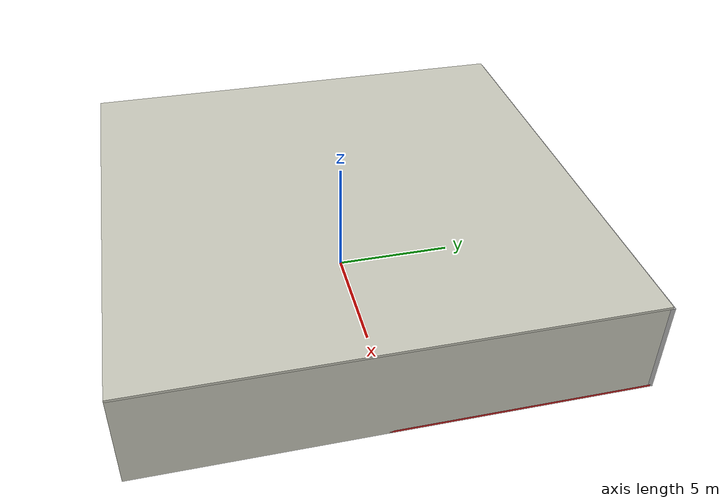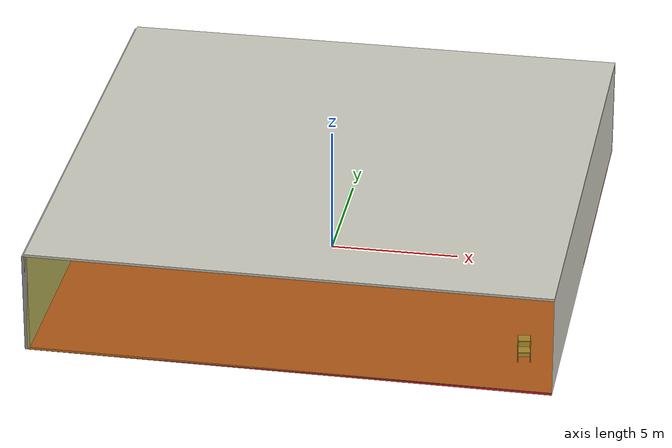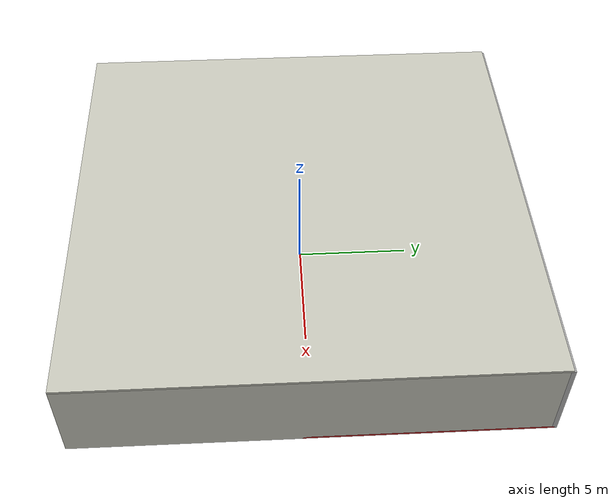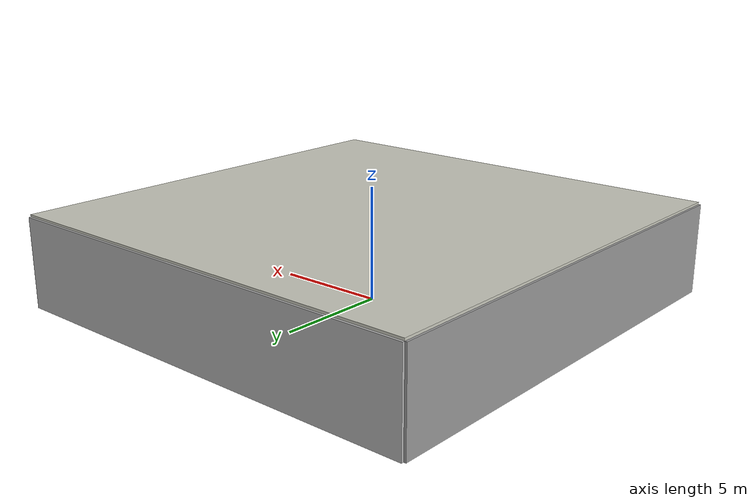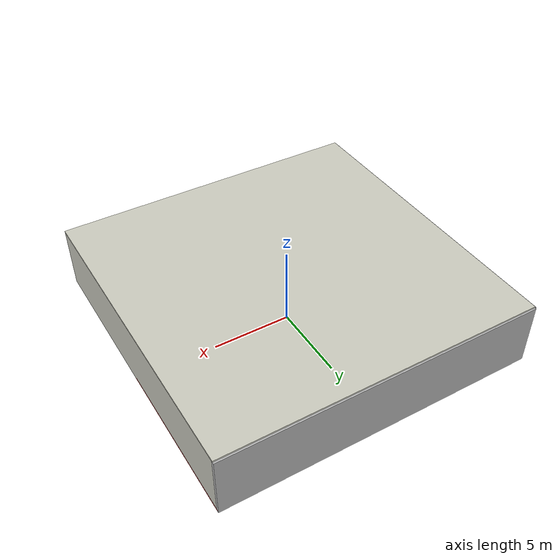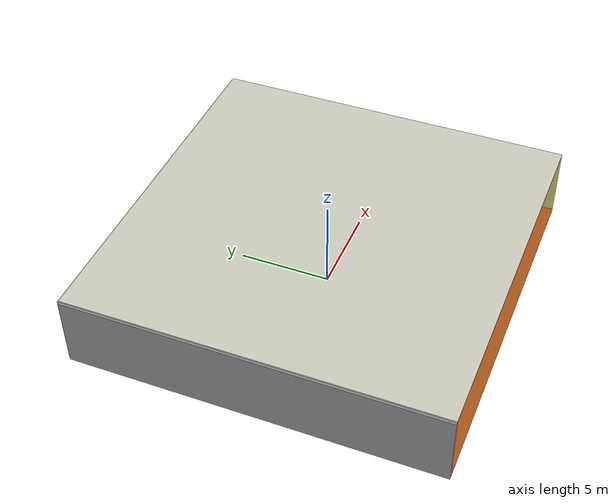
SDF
<sdf version="1.4">
 <world name="default">
  <physics type="ode">
   <max_step_size>0.001</max_step_size>
   <real_time_factor>1</real_time_factor>
   <real_time_update_rate>1000</real_time_update_rate>
   <gravity>0 0 -9.8</gravity>
  </physics>
  <scene><ambient>0.4 0.4 0.4 1</ambient><background>0.7 0.7 0.7 1</background><shadows>1</shadows></scene>
  <model name="Surrounding">
   <static>1</static>
   <link name="Ceiling">
    <collision name="Ceiling_Collision"><geometry><box><size>20 20 0.1</size></box></geometry></collision>
    <visual name="Ceiling_Visual">
     <geometry><box><size>20 20 0.1</size></box></geometry>
     <material>
      <script><uri>file://media/materials/scripts/gazebo.material</uri><name>Gazebo/PaintedWall</name></script>
     </material>
    </visual>
    <pose>0 0 4.05 0 0 0</pose>
   </link>
   <link name="Wall_South">
    <collision name="Wall_South_Collision">
     <geometry><box><size>20 0 4</size></box></geometry>
     <pose>0 0 2 0 -0 0</pose>
    </collision>
    <visual name="Wall_South_Visual">
     <pose>0 0 2 0 -0 0</pose>
     <geometry><box><size>20 0 4</size></box></geometry>
     <material>
      <script>
       <uri>file://media/materials/scripts/gazebo.material</uri>
       <name>Gazebo/YellowTransparent</name>
      </script>
     </material>
    </visual>
    <velocity_decay><linear>0</linear><angular>0</angular></velocity_decay>
    <pose>0 -10 0 0 -0 0</pose>
   </link>
   <link name="Wall_East">
    <collision name="Wall_21_Collision">
     <geometry><box><size>20 0 4</size></box></geometry>
     <pose>0 0 2 0 -0 0</pose>
    </collision>
    <visual name="Wall_21_Visual">
     <pose>0 0 2 0 -0 0</pose>
     <geometry><box><size>20 0 4</size></box></geometry>
     <material>
      <script><uri>file://media/materials/scripts/gazebo.material</uri><name>Gazebo/PaintedWall</name></script>
     </material>
    </visual>
    <velocity_decay><linear>0</linear><angular>0</angular></velocity_decay>
    <pose>10 0 0 0 -0 1.5708</pose>
   </link>
   <link name="Wall_North">
    <collision name="Wall_22_Collision">
     <geometry><box><size>20 0.2 4</size></box></geometry>
     <pose>0 0 2 0 -0 0</pose>
    </collision>
    <visual name="Wall_22_Visual">
     <pose>0 0 2 0 -0 0</pose>
     <geometry><box><size>20 0.2 4</size></box></geometry>
     <material>
      <script><uri>file://media/materials/scripts/gazebo.material</uri><name>Gazebo/JointAnchor</name></script>
     </material>
    </visual>
    <velocity_decay><linear>0</linear><angular>0</angular></velocity_decay>
    <pose>0 10 0 0 -0 0</pose>
   </link>
   <link name="Wall_West">
    <collision name="Wall_23_Collision">
     <geometry><box><size>20 0.2 4</size></box></geometry>
     <pose>0 0 2 0 -0 0</pose>
    </collision>
    <visual name="Wall_23_Visual">
     <pose>0 0 2 0 -0 0</pose>
     <geometry><box><size>20 0.2 4</size></box></geometry>
     <material>
      <script><uri>file://media/materials/scripts/gazebo.material</uri><name>Gazebo/GreyGradientSky</name></script>
     </material>
    </visual>
    <velocity_decay><linear>0</linear><angular>0</angular></velocity_decay>
    <pose>-10 0 0 0 0 -1.5708</pose>
   </link>
   <link name="Ground_link">
    <collision name="collision">
     <pose>0 0 .05 0 -0 0</pose>
     <geometry><box><size>20 20 0.1</size></box></geometry>
    </collision>
    <visual name="visual">
     <pose>0 0 .05 0 -0 0</pose>
     <geometry><box><size>20 20 0.1</size></box></geometry>
     <material>
      <script><uri>file://media/materials/scripts/gazebo.material</uri><name>Gazebo/Red</name></script>
     </material>
    </visual>
   </link>
   <static>1</static>
  </model>
  <spherical_coordinates>
   <surface_model>EARTH_WGS84</surface_model>
   <latitude_deg>0</latitude_deg>
   <longitude_deg>0</longitude_deg>
   <elevation>0</elevation>
   <heading_deg>0</heading_deg>
  </spherical_coordinates>
  <light name="lightball_0" type="diffuse">
   <diffuse>0.8 0.8 0.8 1</diffuse>
   <specular>0.2 0.2 0.2 1</specular>
   <attenuation>
    <range>100</range>
    <constant>0.7</constant>
    <linear>0.01</linear>
    <quadratic>0.001</quadratic>
   </attenuation>
   <direction>-0.5 0.1 -0.9</direction>
   <pose>2.63377726439 4.44166611551 3.44507320576 0 0 0</pose>
  </light>
  <light name="lightball_1" type="diffuse">
   <diffuse>0.8 0.8 0.8 1</diffuse>
   <specular>0.2 0.2 0.2 1</specular>
   <attenuation>
    <range>100</range>
    <constant>0.7</constant>
    <linear>0.01</linear>
    <quadratic>0.001</quadratic>
   </attenuation>
   <direction>-0.5 0.1 -0.9</direction>
   <pose>-7.24275912679 9.71335927627 3.07851599752 0 0 0</pose>
  </light>
  <light name="lightball_2" type="diffuse">
   <diffuse>0.8 0.8 0.8 1</diffuse>
   <specular>0.2 0.2 0.2 1</specular>
   <attenuation>
    <range>100</range>
    <constant>0.7</constant>
    <linear>0.01</linear>
    <quadratic>0.001</quadratic>
   </attenuation>
   <direction>-0.5 0.1 -0.9</direction>
   <pose>8.85298899032 -5.22305330043 0.974413119227 0 0 0</pose>
  </light>
  <light name="lightball_3" type="diffuse">
   <diffuse>0.8 0.8 0.8 1</diffuse>
   <specular>0.2 0.2 0.2 1</specular>
   <attenuation>
    <range>100</range>
    <constant>0.7</constant>
    <linear>0.01</linear>
    <quadratic>0.001</quadratic>
   </attenuation>
   <direction>-0.5 0.1 -0.9</direction>
   <pose>1.27765284665 7.67585901939 1.84494718209 0 0 0</pose>
  </light>
  <light name="lightball_4" type="diffuse">
   <diffuse>0.8 0.8 0.8 1</diffuse>
   <specular>0.2 0.2 0.2 1</specular>
   <attenuation>
    <range>100</range>
    <constant>0.7</constant>
    <linear>0.01</linear>
    <quadratic>0.001</quadratic>
   </attenuation>
   <direction>-0.5 0.1 -0.9</direction>
   <pose>-6.13812808773 9.89947017147 1.98904244334 0 0 0</pose>
  </light>
  <light name="lightball_5" type="diffuse">
   <diffuse>0.8 0.8 0.8 1</diffuse>
   <specular>0.2 0.2 0.2 1</specular>
   <attenuation>
    <range>100</range>
    <constant>0.7</constant>
    <linear>0.01</linear>
    <quadratic>0.001</quadratic>
   </attenuation>
   <direction>-0.5 0.1 -0.9</direction>
   <pose>-0.585302613708 -0.881504930009 1.72599798561 0 0 0</pose>
  </light>
  <light name="lightball_6" type="diffuse">
   <diffuse>0.8 0.8 0.8 1</diffuse>
   <specular>0.2 0.2 0.2 1</specular>
   <attenuation>
    <range>100</range>
    <constant>0.7</constant>
    <linear>0.01</linear>
    <quadratic>0.001</quadratic>
   </attenuation>
   <direction>-0.5 0.1 -0.9</direction>
   <pose>9.46520025037 7.52406464417 3.32866831078 0 0 0</pose>
  </light>
  <light name="lightball_7" type="diffuse">
   <diffuse>0.8 0.8 0.8 1</diffuse>
   <specular>0.2 0.2 0.2 1</specular>
   <attenuation>
    <range>100</range>
    <constant>0.7</constant>
    <linear>0.01</linear>
    <quadratic>0.001</quadratic>
   </attenuation>
   <direction>-0.5 0.1 -0.9</direction>
   <pose>-4.94930132712 8.0101800018 3.85595455138 0 0 0</pose>
  </light>
  <light name="lightball_8" type="diffuse">
   <diffuse>0.8 0.8 0.8 1</diffuse>
   <specular>0.2 0.2 0.2 1</specular>
   <attenuation>
    <range>100</range>
    <constant>0.7</constant>
    <linear>0.01</linear>
    <quadratic>0.001</quadratic>
   </attenuation>
   <direction>-0.5 0.1 -0.9</direction>
   <pose>-0.310722284906 2.20336881211 3.51009477926 0 0 0</pose>
  </light>
  <include>
   <uri>model://construction_cone</uri>
   <pose>-1.23745070641 -0.457584341333 0 0 0 2.42158075958</pose>
  </include>
  <include>
   <uri>model://textured_shapes</uri>
   <pose>-1.02928050773 2.11265415919 0 0 0 0.1924061257</pose>
  </include>
  <include><uri>model://cabinet</uri><pose>-1.32382460544 4.64001009491 0 0 0 1.30504957849</pose></include>
  <include>
   <uri>model://robocup_3Dsim_goal</uri>
   <pose>1.57171512555 6.72462768382 0 0 0 1.26026010628</pose>
  </include>
  <include><uri>model://cabinet</uri><pose>8.65120090977 -7.70910091642 0 0 0 1.7341545223</pose></include>
  <include><uri>model://cabinet</uri><pose>8.16709411712 4.72132308501 0 0 0 1.59312505543</pose></include>
 </world>
</sdf>

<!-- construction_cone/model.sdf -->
<sdf version="1.5">
  <model name="Construction Cone">
    <link name="link">
      <collision name="collision">
        <geometry>
          <mesh>
            <scale>10 10 10</scale>
            <uri>file://isr-testbed/construction_cone/meshes/construction_cone.dae</uri>
          </mesh>
        </geometry>
      </collision>
      <visual name="visual">
        <geometry>
          <mesh>
            <scale>10 10 10</scale>
            <uri>file://isr-testbed/construction_cone/meshes/construction_cone.dae</uri>
          </mesh>
        </geometry>
      </visual>
    </link>
  </model>
</sdf>

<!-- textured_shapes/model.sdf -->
<sdf version="1.6">
  <model name="textured_shapes">
    <pose>0 0 0.5 0 0 0</pose>
    <link name="box">
      <pose>0 -1.5 0 0 0 0</pose>
      <collision name="collision">
        <geometry>
          <box>
            <size>1 1 1</size>
          </box>
        </geometry>
      </collision>
      <visual name="visual">
        <geometry>
          <box>
            <size>1 1 1</size>
          </box>
        </geometry>
        <material>
          <script>
            <uri>model://../model_source/models/textured_shapes/materials/scripts</uri>
            <uri>model://../model_source/models/textured_shapes/materials/textures</uri>
            <name>TexturedShape/Squares</name>
          </script>
        </material>
      </visual>
    </link>
    <link name="sphere">
      <collision name="collision">
        <geometry>
          <sphere>
            <radius>0.5</radius>
          </sphere>
        </geometry>
      </collision>
      <visual name="visual">
        <geometry>
          <sphere>
            <radius>0.5</radius>
          </sphere>
        </geometry>
        <material>
          <script>
            <uri>model://../model_source/models/textured_shapes/materials/scripts</uri>
            <uri>model://../model_source/models/textured_shapes/materials/textures</uri>
            <name>TexturedShape/Squares</name>
          </script>
        </material>
      </visual>
    </link>
    <link name="cylinder">
      <pose>0 1.5 0 0 0 0</pose>
      <collision name="collision">
        <geometry>
          <cylinder>
            <radius>0.5</radius>
            <length>1</length>
          </cylinder>
        </geometry>
      </collision>
      <visual name="visual">
        <geometry>
          <cylinder>
            <radius>0.5</radius>
            <length>1</length>
          </cylinder>
        </geometry>
        <material>
          <script>
            <uri>model://../model_source/models/textured_shapes/materials/scripts</uri>
            <uri>model://../model_source/models/textured_shapes/materials/textures</uri>
            <name>TexturedShape/Squares</name>
          </script>
        </material>
      </visual>
    </link>
  </model>
</sdf>

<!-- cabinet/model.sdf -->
<sdf version="1.5">
  <model name="cabinet">
    <static>true</static>
    <link name="cabinet_bottom_plate">
      <inertial>
        <pose>0 0 -1 0 0 0</pose>
        <inertia>
          <ixx>2.050000</ixx>
          <ixy>0</ixy>
          <ixz>0</ixz>
          <iyy>2.050000</iyy>
          <iyz>0</iyz>
          <izz>2.050000</izz>
        </inertia>
        <mass>25.000000</mass>
      </inertial>
      <collision name="cabinet_bottom_plate_geom">
        <pose>0 0 0.010000 0 0 0</pose>
        <geometry>
          <box>
            <size>0.450000 0.450000 0.020000</size>
          </box>
        </geometry>
      </collision>
      <visual name="cabinet_bottom_plate_geom_visual">
        <pose>0 0 0.010000 0 0 0</pose>
        <geometry>
          <box>
            <size>0.450000 0.450000 0.020000</size>
          </box>
        </geometry>
        <material>
          <script>
            <uri>model://media/materials/scripts/gazebo.material</uri>
            <name>Gazebo/Wood</name>
          </script>
        </material>
      </visual>
      <collision name="cabinet_bottom_plate_geom_cabinet_back_plate">
        <pose>0.235000 0 0.510000 0 0 0</pose>
        <geometry>
          <box>
            <size>0.020000 0.450000 1.020000</size>
          </box>
        </geometry>
      </collision>
      <visual name="cabinet_bottom_plate_geom_cabinet_back_plate_visual">
        <pose>0.235000 0 0.510000 0 0 0</pose>
        <geometry>
          <box>
            <size>0.020000 0.450000 1.020000</size>
          </box>
        </geometry>
        <material>
          <script>
            <uri>model://media/materials/scripts/gazebo.material</uri>
            <name>Gazebo/Wood</name>
          </script>
        </material>
      </visual>
      <collision name="cabinet_bottom_plate_geom_cabinet_left_plate">
        <pose>0 0.235000 0.510000 0 0 0</pose>
        <geometry>
          <box>
            <size>0.450000 0.020000 1.020000</size>
          </box>
        </geometry>
      </collision>
      <visual name="cabinet_bottom_plate_geom_cabinet_left_plate_visual">
        <pose>0 0.235000 0.510000 0 0 0</pose>
        <geometry>
          <box>
            <size>0.450000 0.020000 1.020000</size>
          </box>
        </geometry>
        <material>
          <script>
            <uri>model://media/materials/scripts/gazebo.material</uri>
            <name>Gazebo/Wood</name>
          </script>
        </material>
      </visual>
      <collision name="cabinet_bottom_plate_geom_cabinet_middle_plate">
        <pose>0 0 0.510000 0 0 0</pose>
        <geometry>
          <box>
            <size>0.450000 0.450000 0.020000</size>
          </box>
        </geometry>
      </collision>
      <visual name="cabinet_bottom_plate_geom_cabinet_middle_plate_visual">
        <pose>0 0 0.510000 0 0 0</pose>
        <geometry>
          <box>
            <size>0.450000 0.450000 0.020000</size>
          </box>
        </geometry>
        <material>
          <script>
            <uri>model://media/materials/scripts/gazebo.material</uri>
            <name>Gazebo/Wood</name>
          </script>
        </material>
      </visual>
      <collision name="cabinet_bottom_plate_geom_cabinet_right_plate">
        <pose>0 -0.235000 0.510000 0 0 0</pose>
        <geometry>
          <box>
            <size>0.450000 0.020000 1.020000</size>
          </box>
        </geometry>
      </collision>
      <visual name="cabinet_bottom_plate_geom_cabinet_right_plate_visual">
        <pose>0 -0.235000 0.510000 0 0 0</pose>
        <geometry>
          <box>
            <size>0.450000 0.020000 1.020000</size>
          </box>
        </geometry>
        <material>
          <script>
            <uri>model://media/materials/scripts/gazebo.material</uri>
            <name>Gazebo/Wood</name>
          </script>
        </material>
      </visual>
      <collision name="cabinet_bottom_plate_geom_cabinet_top_plate">
        <pose>0 0 1.010000 0 0 0</pose>
        <geometry>
          <box>
            <size>0.450000 0.450000 0.020000</size>
          </box>
        </geometry>
      </collision>
      <visual name="cabinet_bottom_plate_geom_cabinet_top_plate_visual">
        <pose>0 0 1.010000 0 0 0</pose>
        <geometry>
          <box>
            <size>0.450000 0.450000 0.020000</size>
          </box>
        </geometry>
        <material>
          <script>
            <uri>model://media/materials/scripts/gazebo.material</uri>
            <name>Gazebo/Wood</name>
          </script>
        </material>
      </visual>
    </link>
  </model>
</sdf>

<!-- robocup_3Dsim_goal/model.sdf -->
<sdf version="1.5">
  <model name="robocup_3d_goal">
    <static>true</static>
    <link name="left_post">
      <pose>0 1.05 0.45 0 0 0</pose>
      <collision name="collision">
        <geometry>
          <cylinder>
            <radius>0.05</radius>
            <length>0.9</length>
          </cylinder>
        </geometry>
      </collision>
      <visual name="visual">
        <geometry>
          <cylinder>
            <radius>0.05</radius>
            <length>0.9</length>
          </cylinder>
        </geometry>
        <material>
          <script>
            <uri>file://media/materials/scripts/gazebo.material</uri>
            <name>Gazebo/ZincYellow</name>
          </script>
        </material>
      </visual>
    </link>
    <link name="left_support_horiz_lower">
      <pose>0.30 1.05 0.01 0 0 0</pose>
      <collision name="collision">
        <geometry>
          <box>
            <size>0.50 0.02 0.02</size>
          </box>
        </geometry>
      </collision>
      <visual name="visual">
        <geometry>
          <box>
            <size>0.50 0.02 0.02</size>
          </box>
        </geometry>
        <material>
          <script>
            <uri>file://media/materials/scripts/gazebo.material</uri>
            <name>Gazebo/White</name>
          </script>
        </material>
      </visual>
    </link>
    <link name="left_support_horiz_upper">
      <pose>0.30 1.05 0.79 0 0 0</pose>
      <collision name="collision">
        <geometry>
          <box>
            <size>0.50 0.02 0.02</size>
          </box>
        </geometry>
      </collision>
      <visual name="visual">
        <geometry>
          <box>
            <size>0.50 0.02 0.02</size>
          </box>
        </geometry>
        <material>
          <script>
            <uri>file://media/materials/scripts/gazebo.material</uri>
            <name>Gazebo/White</name>
          </script>
        </material>
      </visual>
    </link>
    <link name="left_support_vertical">
      <pose>0.56 1.05 0.4 0 1.5708 0</pose>
      <collision name="collision">
        <geometry>
          <box>
            <size>0.80 0.02 0.02</size>
          </box>
        </geometry>
      </collision>
      <visual name="visual">
        <geometry>
          <box>
            <size>0.80 0.02 0.02</size>
          </box>
        </geometry>
        <material>
          <script>
            <uri>file://media/materials/scripts/gazebo.material</uri>
            <name>Gazebo/White</name>
          </script>
        </material>
      </visual>
    </link>
    <link name="right_support_horiz_lower">
      <pose>0.30 -1.05 0.01 0 0 0</pose>
      <collision name="collision">
        <geometry>
          <box>
            <size>0.50 0.02 0.02</size>
          </box>
        </geometry>
      </collision>
      <visual name="visual">
        <geometry>
          <box>
            <size>0.50 0.02 0.02</size>
          </box>
        </geometry>
        <material>
          <script>
            <uri>file://media/materials/scripts/gazebo.material</uri>
            <name>Gazebo/White</name>
          </script>
        </material>
      </visual>
    </link>
    <link name="right_support_horiz_upper">
      <pose>0.30 -1.05 0.79 0 0 0</pose>
      <collision name="collision">
        <geometry>
          <box>
            <size>0.50 0.02 0.02</size>
          </box>
        </geometry>
      </collision>
      <visual name="visual">
        <geometry>
          <box>
            <size>0.50 0.02 0.02</size>
          </box>
        </geometry>
        <material>
          <script>
            <uri>file://media/materials/scripts/gazebo.material</uri>
            <name>Gazebo/White</name>
          </script>
        </material>
      </visual>
    </link>
    <link name="right_support_vertical">
      <pose>0.56 -1.05 0.4 0 1.5708 0</pose>
      <collision name="collision">
        <geometry>
          <box>
            <size>0.80 0.02 0.02</size>
          </box>
        </geometry>
      </collision>
      <visual name="visual">
        <geometry>
          <box>
            <size>0.80 0.02 0.02</size>
          </box>
        </geometry>
        <material>
          <script>
            <uri>file://media/materials/scripts/gazebo.material</uri>
            <name>Gazebo/White</name>
          </script>
        </material>
      </visual>
    </link>
    <link name="center_support_horiz_lower">
      <pose>0.56 0 0.01 0 1.5708 0</pose>
      <collision name="collision">
        <geometry>
          <box>
            <size>0.02 2.08 0.02</size>
          </box>
        </geometry>
      </collision>
      <visual name="visual">
        <geometry>
          <box>
            <size>0.02 2.08 0.02</size>
          </box>
        </geometry>
        <material>
          <script>
            <uri>file://media/materials/scripts/gazebo.material</uri>
            <name>Gazebo/White</name>
          </script>
        </material>
      </visual>
    </link>
    <link name="center_support_horiz_upper">
      <pose>0.56 0 0.79 0 1.5708 0</pose>
      <collision name="collision">
        <geometry>
          <box>
            <size>0.02 2.08 0.02</size>
          </box>
        </geometry>
      </collision>
      <visual name="visual">
        <geometry>
          <box>
            <size>0.02 2.08 0.02</size>
          </box>
        </geometry>
        <material>
          <script>
            <uri>file://media/materials/scripts/gazebo.material</uri>
            <name>Gazebo/White</name>
          </script>
        </material>
      </visual>
    </link>
    <link name="right_post">
      <pose>0 -1.05 0.45 0 0 0</pose>
      <collision name="collision">
        <geometry>
          <cylinder>
            <radius>0.05</radius>
            <length>0.9</length>
          </cylinder>
        </geometry>
      </collision>
      <visual name="visual">
        <geometry>
          <cylinder>
            <radius>0.05</radius>
            <length>0.9</length>
          </cylinder>
        </geometry>
        <material>
          <script>
            <uri>file://media/materials/scripts/gazebo.material</uri>
            <name>Gazebo/ZincYellow</name>
          </script>
        </material>
      </visual>
    </link>
    <link name="crossbar">
      <pose>0 0 0.85 1.57 1.57 0</pose>
      <collision name="collision">
        <geometry>
          <cylinder>
            <radius>0.05</radius>
            <length>2.0</length>
          </cylinder>
        </geometry>
      </collision>
      <visual name="visual">
        <geometry>
          <cylinder>
            <radius>0.05</radius>
            <length>2.0</length>
          </cylinder>
        </geometry>
        <material>
          <script>
            <uri>file://media/materials/scripts/gazebo.material</uri>
            <name>Gazebo/ZincYellow</name>
          </script>
        </material>
      </visual>
    </link>
    <link name="center_net">
      <pose>0.56 0 0.40 0 0 0</pose>
      <collision name="collision">
        <geometry>
          <box>
            <size>0.01 2.1 0.80</size>
          </box>
        </geometry>
      </collision>
      <visual name="visual">
        <geometry>
          <box>
            <size>0.01 2.1 0.80</size>
          </box>
        </geometry>
        <material>
          <script>
            <uri>model://../model_source/models/robocup09_spl_field/materials/scripts/</uri>
            <uri>model://../model_source/models/robocup09_spl_field/materials/textures/</uri>
            <name>RoboCup/Net</name>
          </script>
        </material>
      </visual>
    </link>
    <link name="left_net">
      <pose>0.30 1.05 0.40 0 0 0</pose>
      <collision name="collision">
        <geometry>
          <box>
            <size>0.50 0.01 0.76</size>
          </box>
        </geometry>
      </collision>
      <visual name="visual">
        <geometry>
          <box>
            <size>0.50 0.01 0.76</size>
          </box>
        </geometry>
        <material>
          <script>
            <uri>model://../model_source/models/robocup09_spl_field/materials/scripts/</uri>
            <uri>model://../model_source/models/robocup09_spl_field/materials/textures/</uri>
            <name>RoboCup/Net</name>
          </script>
        </material>
      </visual>
    </link>
    <link name="right_net">
      <pose>0.30 -1.05 0.40 0 0 0</pose>
      <collision name="collision">
        <geometry>
          <box>
            <size>0.50 0.01 0.76</size>
          </box>
        </geometry>
      </collision>
      <visual name="visual">
        <geometry>
          <box>
            <size>0.50 0.01 0.76</size>
          </box>
        </geometry>
        <material>
          <script>
            <uri>model://../model_source/models/robocup09_spl_field/materials/scripts/</uri>
            <uri>model://../model_source/models/robocup09_spl_field/materials/textures/</uri>
            <name>RoboCup/Net</name>
          </script>
        </material>
      </visual>
    </link>
  </model>
</sdf>
